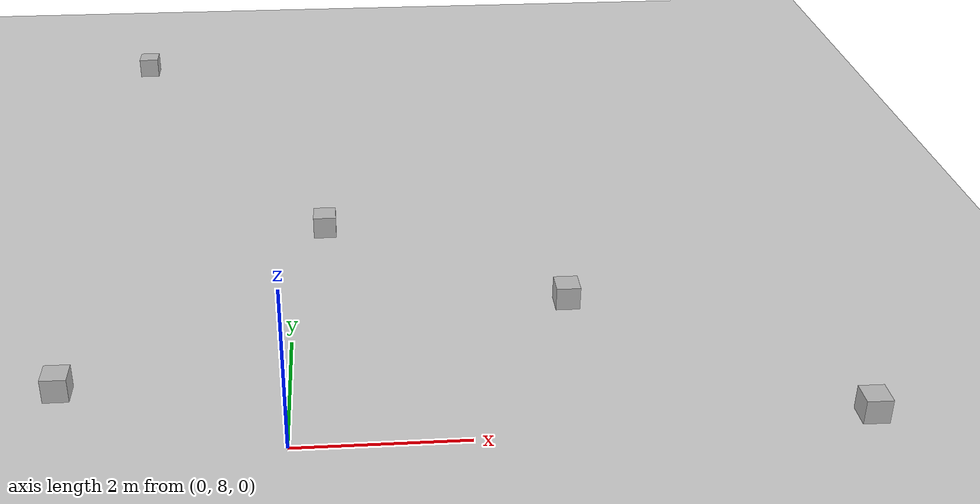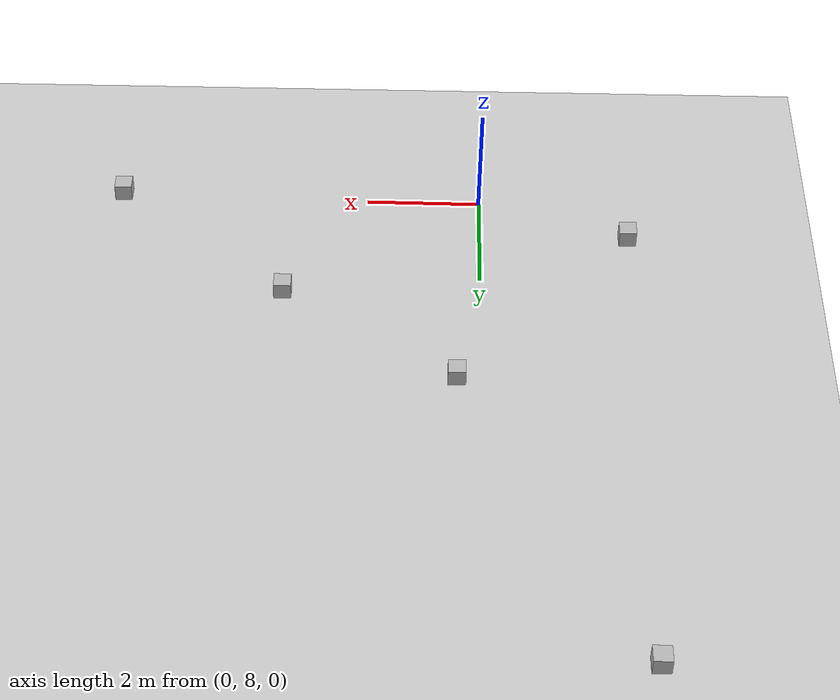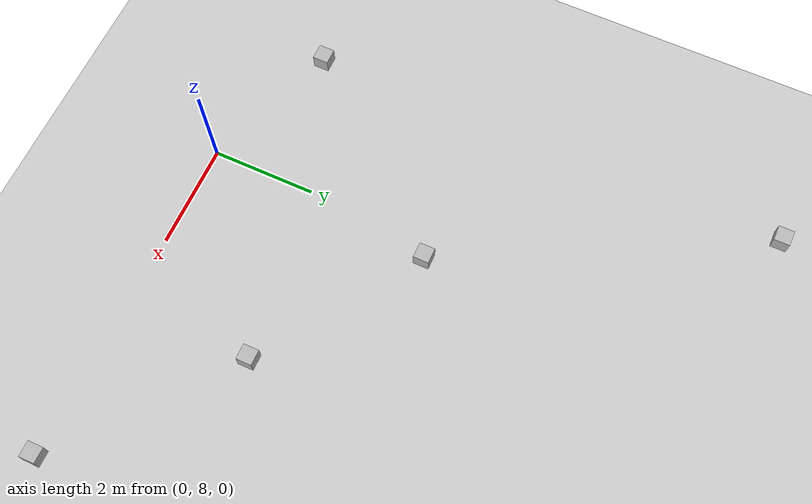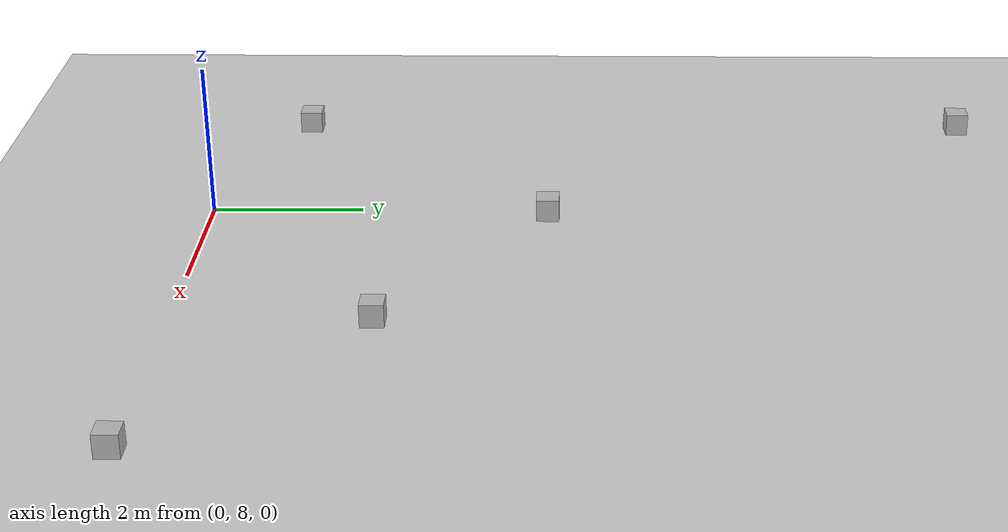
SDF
<?xml version="1.0" ?>
<sdf version="1.5">
  <world name="empty">
    <!--A global light source-->
    <include>
      <uri>model://sun</uri>
    </include>
    <!--A ground plane-->
    <include>
      <uri>model://ground_plane</uri>
    </include>
    <!--A cube-->
    <include>
      <uri>model://cube</uri>
      <pose>0.4 0 0.0 0 0 0</pose>
    </include>
    <!--Camera settings-->
    <gui fullscreen='0'>
      <camera name='user_camera'>
        <pose>0.646183 -0.123158 0.324322 0 0.323642 2.8042</pose>
        <view_controller>orbit</view_controller>
        <projection_type>perspective</projection_type>
      </camera>
    </gui>
  </world>
</sdf>

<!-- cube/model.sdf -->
<sdf version="1.5">
    <model name="cube">
        <static>true</static>
        <link name="link">
            <collision name="collision1">
                <pose>0 12.5 0.1 0 0 0</pose>
                <geometry>
                    <mesh>
                        <uri>model://cube/meshes/cube.dae</uri>
                    </mesh>
                </geometry>
            </collision>
            <visual name="visual1">

              <pose>0 12.5 0.1 0 0 0</pose>
              <geometry>
              <mesh>
                 <uri>model://cube/meshes/cube.dae</uri>
              </mesh>
              </geometry>

              <material>
                  <script>
                      <uri>model://cube/materials/scripts</uri>
                      <uri>model://cube/materials/textures</uri>
                      <name>cubeMat/Diffuse</name>
                  </script>
              </material>
             </visual>

             <collision name="collision2">
                <pose>3 10.5 0.1 0 0 0</pose>
                <geometry>
                    <mesh>
                        <uri>model://cube/meshes/cube.dae</uri>
                    </mesh>
                </geometry>
            </collision>
            <visual name="visual2">

              <pose>3 10.5 0.1 0 0 0</pose>
              <geometry>
              <mesh>
                 <uri>model://cube/meshes/cube.dae</uri>
              </mesh>
              </geometry>

              <material>
                  <script>
                      <uri>model://cube/materials/scripts</uri>
                      <uri>model://cube/materials/textures</uri>
                      <name>cubeMat/Diffuse</name>
                  </script>
              </material>
             </visual>

             <collision name="collision3">
                <pose>-3 9 0.1 0 0 0</pose>
                <geometry>
                    <mesh>
                        <uri>model://cube/meshes/cube.dae</uri>
                    </mesh>
                </geometry>
            </collision>
            <visual name="visual3">

              <pose>-3 9 0.1 0 0 0</pose>
              <geometry>
              <mesh>
                 <uri>model://cube/meshes/cube.dae</uri>
              </mesh>
              </geometry>

              <material>
                  <script>
                      <uri>model://cube/materials/scripts</uri>
                      <uri>model://cube/materials/textures</uri>
                      <name>cubeMat/Diffuse</name>
                  </script>
              </material>
             </visual>

             <collision name="collision4">
                <pose>6 8 0.1 0 0 0</pose>
                <geometry>
                    <mesh>
                        <uri>model://cube/meshes/cube.dae</uri>
                    </mesh>
                </geometry>
            </collision>
            <visual name="visual4">

              <pose>6 8 0.1 0 0 0</pose>
              <geometry>
              <mesh>
                 <uri>model://cube/meshes/cube.dae</uri>
              </mesh>
              </geometry>

              <material>
                  <script>
                      <uri>model://cube/materials/scripts</uri>
                      <uri>model://cube/materials/textures</uri>
                      <name>cubeMat/Diffuse</name>
                  </script>
              </material>
             </visual>

             <collision name="collision5">
                <pose>-3 18.3 0.1 0 0 0</pose>
                <geometry>
                    <mesh>
                        <uri>model://cube/meshes/cube.dae</uri>
                    </mesh>
                </geometry>
            </collision>
            <visual name="visual5">

              <pose>-3 18.3 0.1 0 0 0</pose>
              <geometry>
              <mesh>
                 <uri>model://cube/meshes/cube.dae</uri>
              </mesh>
              </geometry>

              <material>
                  <script>
                      <uri>model://cube/materials/scripts</uri>
                      <uri>model://cube/materials/textures</uri>
                      <name>cubeMat/Diffuse</name>
                  </script>
              </material>
             </visual>
        </link>
    </model>
</sdf>
